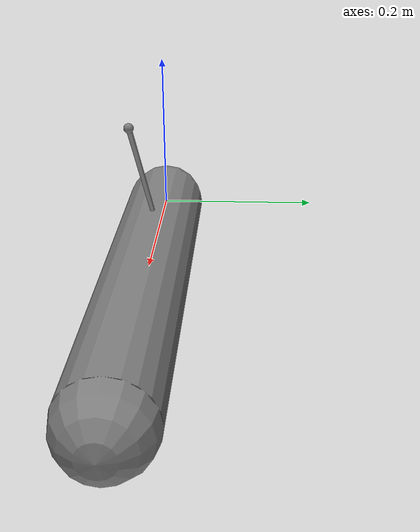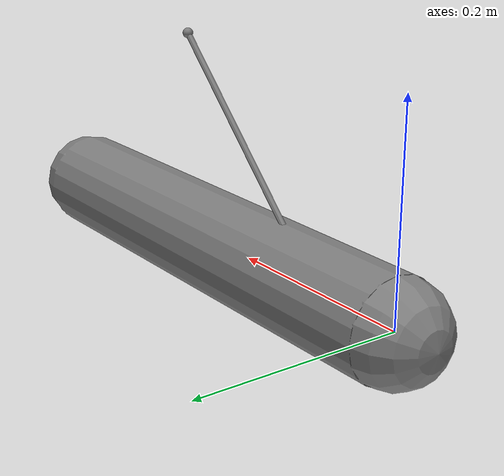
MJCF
<mujoco><worldbody><body><joint name="j" type="hinge" axis="0 1 0"/>
<geom type="capsule" fromto="0 0 0 0.5 0 0" size="0.05"/><site name="a" pos="0.1 0 0"/></body>
<site name="b" pos="0.3 0 0.2"/></worldbody>
<tendon><spatial name="t"><site site="a"/><site site="b"/></spatial></tendon>
<actuator><muscle tendon="t"/><motor joint="j" ctrllimited="true" ctrlrange="1 -1"/></actuator></mujoco>
